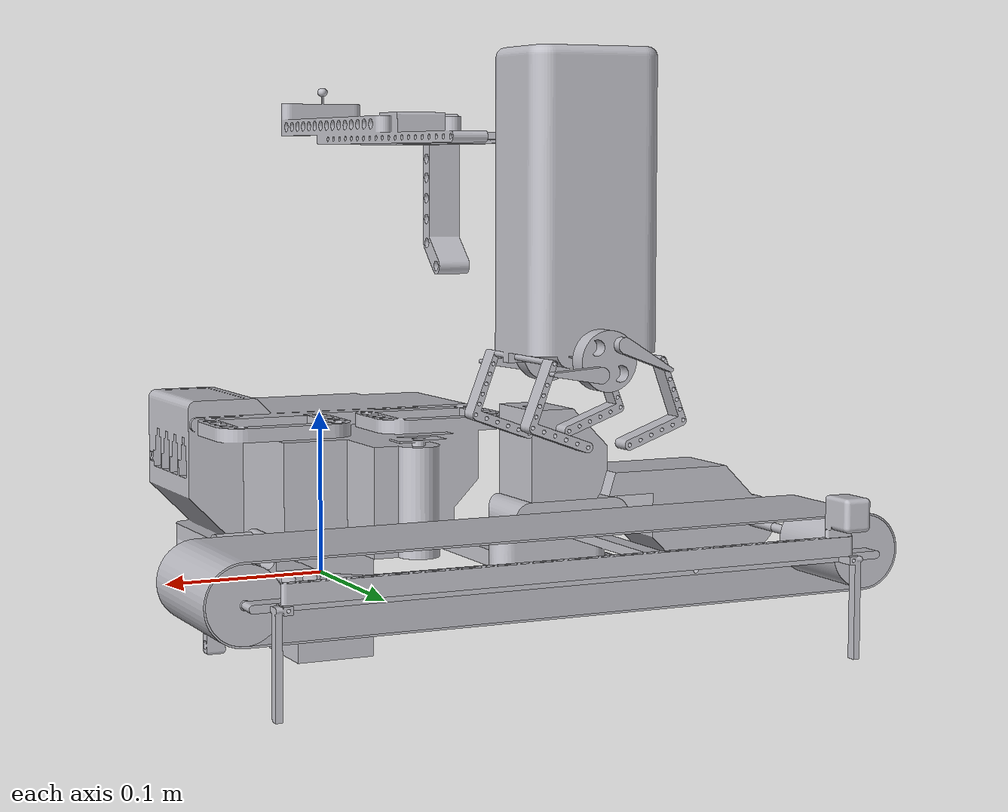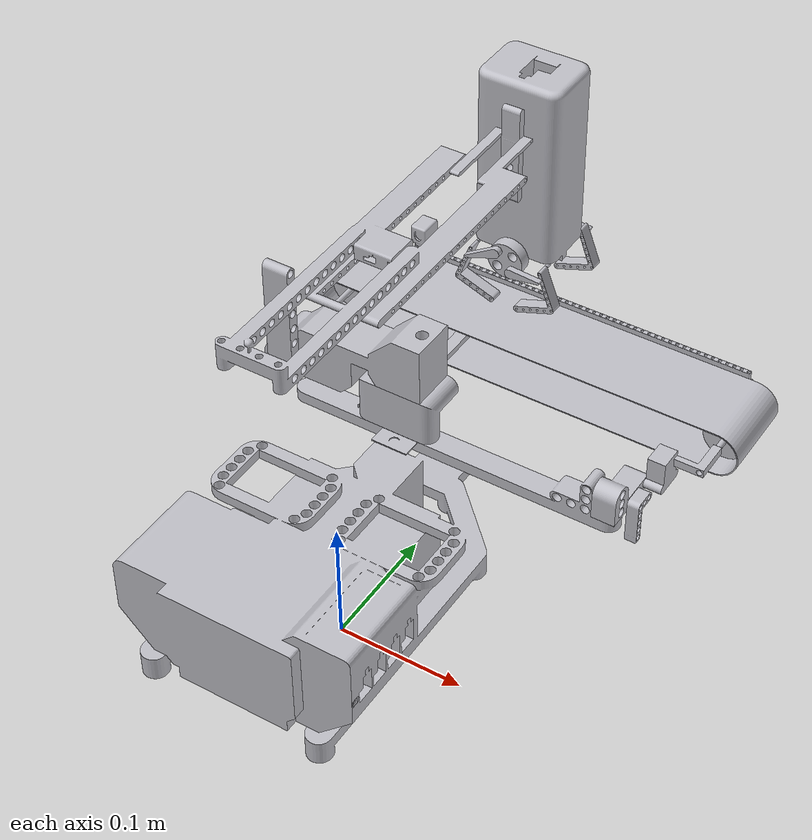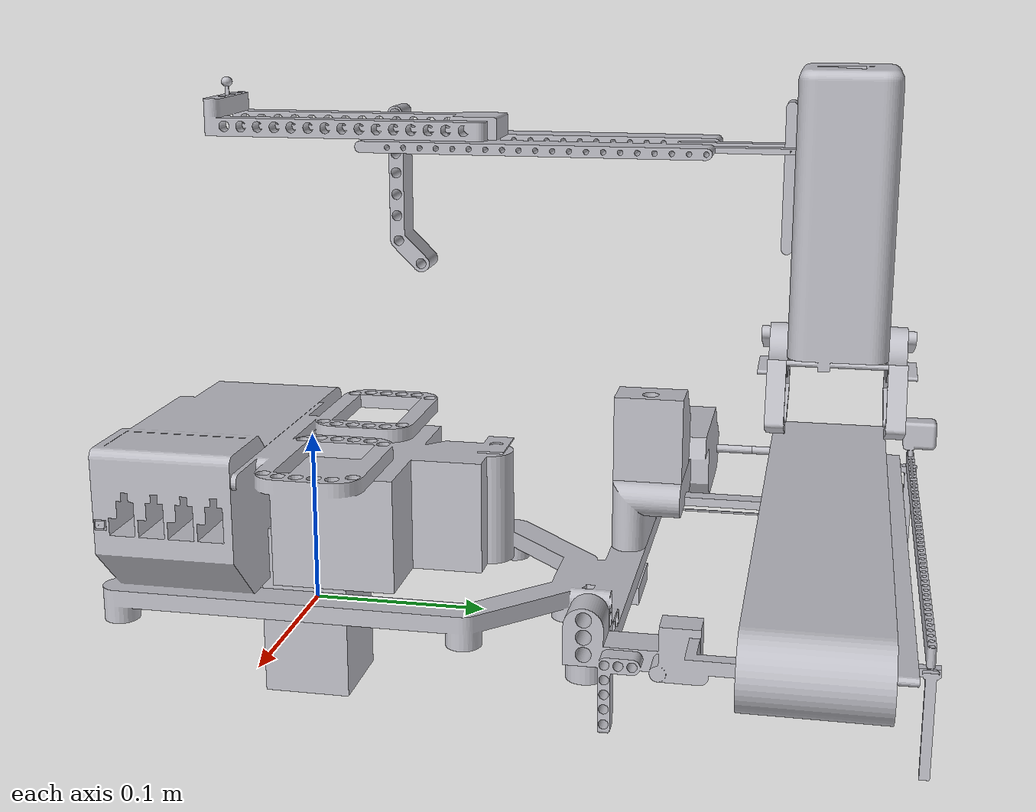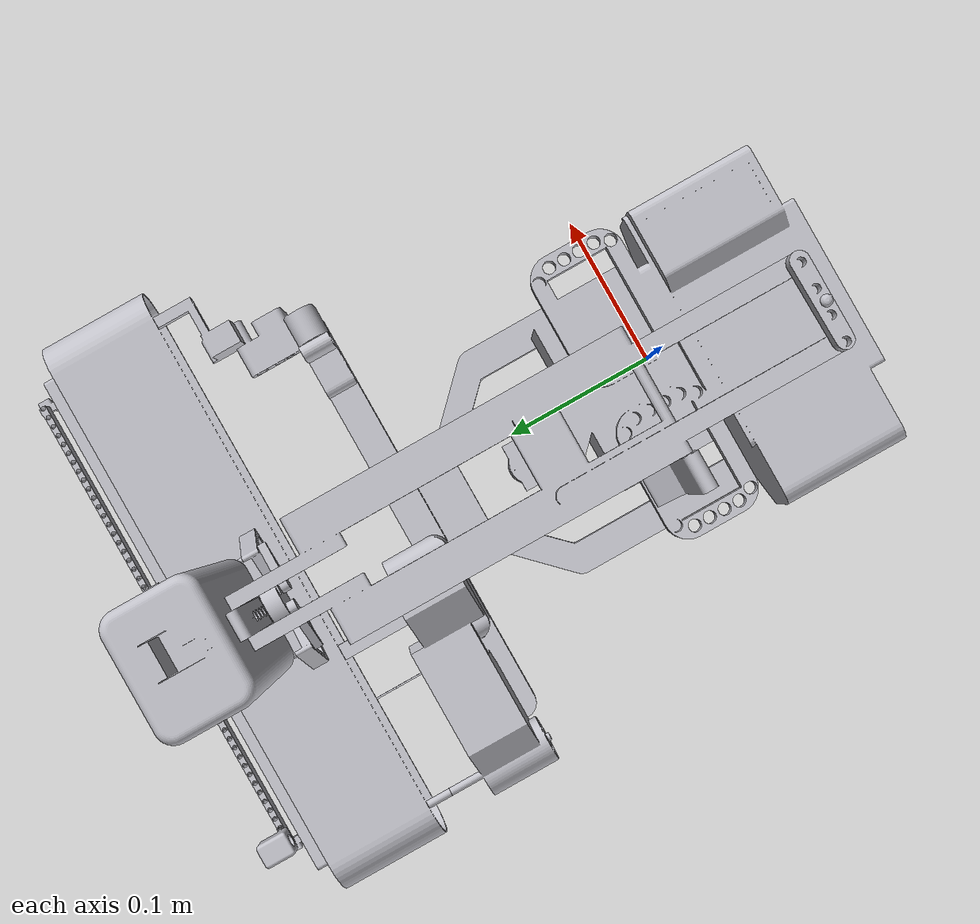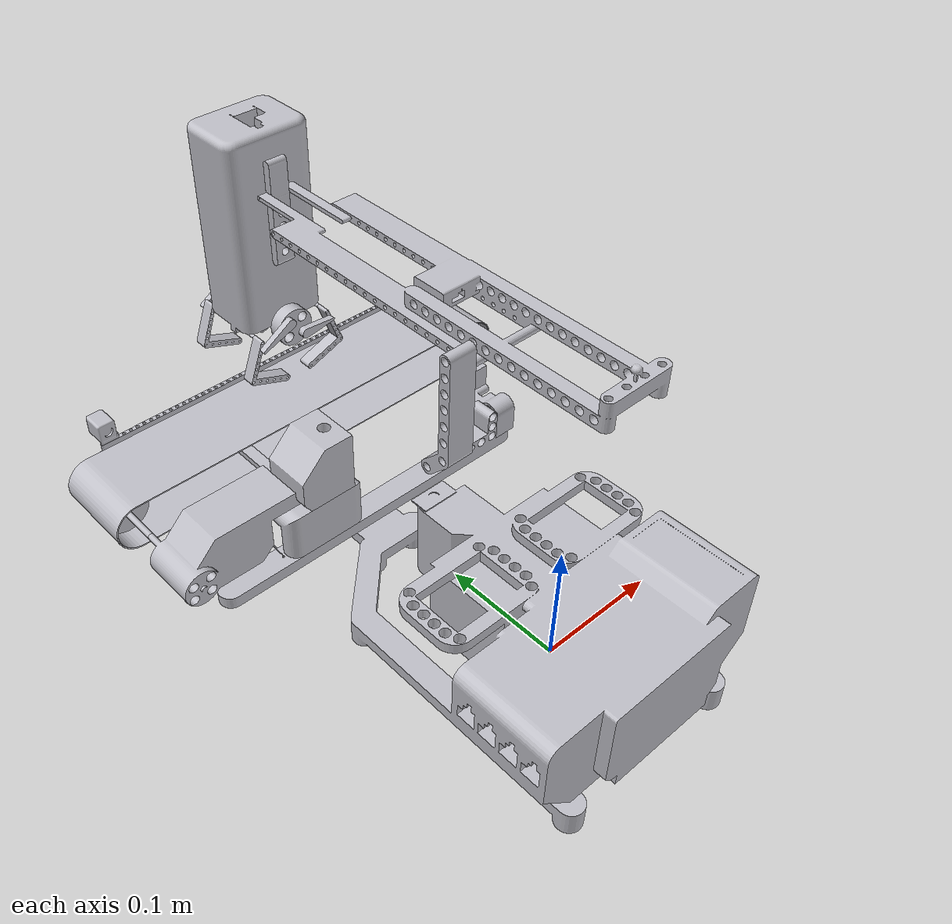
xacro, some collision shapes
<?xml version="1.0" ?>
<robot name="manipulator_with_joints_brick_ev3_urdf" xmlns:xacro="http://www.ros.org/wiki/xacro">

  <!-- ==================== LINKS ==================== -->

  <link name="base_link">
    <inertial>
      <origin xyz="-0.0158078204635883 -0.016684343494357445 0.05630015108836342" rpy="0 0 0"/>
      <mass value="2.378418557"/>
      <inertia ixx="0.012898312" iyy="0.007130411" izz="0.017048032"
               ixy="-0.000501963" iyz="0.001110223" ixz="-0.000106502"/>
    </inertial>
    <visual>
      <origin xyz="0 0 0" rpy="0 0 0"/>
      <geometry>
        <mesh filename="file://$(find manipulator_ev3_brick)/meshes/base_link.stl" scale="0.001 0.001 0.001"/>
      </geometry>
      <material name="silver"/>
    </visual>
    <collision>
      <origin xyz="0 0 0" rpy="0 0 0"/>
      <geometry><box size="0.05 0.05 0.1"/></geometry>
    </collision>
  </link>

  <link name="left_finger_inner_linkage_link_1">
    <inertial>
      <origin xyz="0.01700074655116763 0.002406578063678111 0.008427489616652517" rpy="0 0 0"/>
      <mass value="0.000970829"/>
      <inertia ixx="0.000000019" iyy="0.000000077" izz="0.000000062"
               ixy="0.000000000" iyz="-0.000000000" ixz="-0.000000028"/>
    </inertial>
    <visual>
      <origin xyz="0.050353 -0.329879 -0.154227" rpy="0 0 0"/>
      <geometry>
        <mesh filename="file://$(find manipulator_ev3_brick)/meshes/left_finger_inner_linkage_link_1.stl" scale="0.001 0.001 0.001"/>
      </geometry>
      <material name="silver"/>
    </visual>
    <collision>
      <origin xyz="0.050353 -0.329879 -0.154227" rpy="0 0 0"/>
      <geometry>
        <mesh filename="file://$(find manipulator_ev3_brick)/meshes/left_finger_inner_linkage_link_1.stl" scale="0.001 0.001 0.001"/>
      </geometry>
    </collision>
  </link>

  <link name="left_finger_outer_linkage_link_1">
    <inertial>
      <origin xyz="-0.01688932328942115 0.0026112161614025298 -0.0008259090537868774" rpy="0 0 0"/>
      <mass value="0.000882953"/>
      <inertia ixx="0.000000005" iyy="0.000000056" izz="0.000000055"
               ixy="-0.000000000" iyz="-0.000000000" ixz="-0.000000002"/>
    </inertial>
    <visual>
      <origin xyz="-0.013526 -0.329451 -0.154228" rpy="0 0 0"/>
      <geometry>
        <mesh filename="file://$(find manipulator_ev3_brick)/meshes/left_finger_outer_linkage_link_1.stl" scale="0.001 0.001 0.001"/>
      </geometry>
      <material name="silver"/>
    </visual>
    <collision>
      <origin xyz="-0.013526 -0.329451 -0.154228" rpy="0 0 0"/>
      <geometry>
        <mesh filename="file://$(find manipulator_ev3_brick)/meshes/left_finger_outer_linkage_link_1.stl" scale="0.001 0.001 0.001"/>
      </geometry>
    </collision>
  </link>

  <link name="right_finger_outer_linkage_link_1">
    <inertial>
      <origin xyz="-0.01692208707665091 -0.002388812397886797 -0.0008135696514209034" rpy="0 0 0"/>
      <mass value="0.000882956"/>
      <inertia ixx="0.000000005" iyy="0.000000056" izz="0.000000055"
               ixy="-0.000000000" iyz="0.000000000" ixz="-0.000000002"/>
    </inertial>
    <visual>
      <origin xyz="-0.013038 -0.25677 -0.154403" rpy="0 0 0"/>
      <geometry>
        <mesh filename="file://$(find manipulator_ev3_brick)/meshes/right_finger_outer_linkage_link_1.stl" scale="0.001 0.001 0.001"/>
      </geometry>
      <material name="silver"/>
    </visual>
    <collision>
      <origin xyz="-0.013038 -0.25677 -0.154403" rpy="0 0 0"/>
      <geometry>
        <mesh filename="file://$(find manipulator_ev3_brick)/meshes/right_finger_outer_linkage_link_1.stl" scale="0.001 0.001 0.001"/>
      </geometry>
    </collision>
  </link>

  <link name="right_finger_inner_linkage_link_1">
    <inertial>
      <origin xyz="0.016966982764787364 -0.0025934503666555364 0.008438882478046833" rpy="0 0 0"/>
      <mass value="0.000970832"/>
      <inertia ixx="0.000000019" iyy="0.000000077" izz="0.000000062"
               ixy="0.000000000" iyz="0.000000000" ixz="-0.000000028"/>
    </inertial>
    <visual>
      <origin xyz="0.05084 -0.257198 -0.154403" rpy="0 0 0"/>
      <geometry>
        <mesh filename="file://$(find manipulator_ev3_brick)/meshes/right_finger_inner_linkage_link_1.stl" scale="0.001 0.001 0.001"/>
      </geometry>
      <material name="silver"/>
    </visual>
    <collision>
      <origin xyz="0.05084 -0.257198 -0.154403" rpy="0 0 0"/>
      <geometry>
        <mesh filename="file://$(find manipulator_ev3_brick)/meshes/right_finger_inner_linkage_link_1.stl" scale="0.001 0.001 0.001"/>
      </geometry>
    </collision>
  </link>

  <link name="arm_2_connector_1">
    <inertial>
      <origin xyz="0.007498677795214074 -0.00027180465342713234 -0.013641600058967529" rpy="0 0 0"/>
      <mass value="0.007677799"/>
      <inertia ixx="0.000004182" iyy="0.000004315" izz="0.000000181"
               ixy="0.000000000" iyz="-0.000000000" ixz="-0.000000000"/>
    </inertial>
    <visual>
      <origin xyz="0.026647 -0.2644 -0.268791" rpy="0 0 0"/>
      <geometry>
        <mesh filename="file://$(find manipulator_ev3_brick)/meshes/arm_2_connector_1.stl" scale="0.001 0.001 0.001"/>
      </geometry>
      <material name="silver"/>
    </visual>
    <collision>
      <origin xyz="0.026647 -0.2644 -0.268791" rpy="0 0 0"/>
      <geometry><box size="0.05 0.05 0.1"/></geometry>
    </collision>
  </link>

  <link name="arm_2_1">
    <inertial>
      <origin xyz="0.034700766160954036 0.05025123595485467 0.004720391674524038" rpy="0 0 0"/>
      <mass value="0.091915293"/>
      <inertia ixx="0.000560353" iyy="0.000048371" izz="0.000602558"
               ixy="-0.000003798" iyz="0.000025428" ixz="0.000000285"/>
    </inertial>
    <visual>
      <origin xyz="0.055568 -0.037636 -0.266626" rpy="0 0 0"/>
      <geometry>
        <mesh filename="file://$(find manipulator_ev3_brick)/meshes/arm_2_1.stl" scale="0.001 0.001 0.001"/>
      </geometry>
      <material name="silver"/>
    </visual>
    <collision>
      <origin xyz="0.055568 -0.037636 -0.266626" rpy="0 0 0"/>
      <geometry><box size="0.05 0.05 0.1"/></geometry>
    </collision>
  </link>

  <link name="left_arm_linkage_1">
    <inertial>
      <origin xyz="-0.009988737092035405 0.00167002119863717 0.024518765633563366" rpy="0 0 0"/>
      <mass value="0.015158310"/>
      <inertia ixx="0.000012000" iyy="0.000012103" izz="0.000000908"
               ixy="-0.000000000" iyz="0.000001200" ixz="0.000000000"/>
    </inertial>
    <visual>
      <origin xyz="0.055563 -0.038353 -0.204384" rpy="0 0 0"/>
      <geometry>
        <mesh filename="file://$(find manipulator_ev3_brick)/meshes/left_arm_linkage_1.stl" scale="0.001 0.001 0.001"/>
      </geometry>
      <material name="silver"/>
    </visual>
    <collision>
      <origin xyz="0.055563 -0.038353 -0.204384" rpy="0 0 0"/>
      <geometry><box size="0.05 0.05 0.1"/></geometry>
    </collision>
  </link>

  <link name="arm_1_1">
    <inertial>
      <origin xyz="0.0013094707050252223 -0.0115208595175465 0.0832258873283381" rpy="0 0 0"/>
      <mass value="0.400284168"/>
      <inertia ixx="0.000545387" iyy="0.000453139" izz="0.000394604"
               ixy="-0.000003534" iyz="0.000101804" ixz="-0.000005126"/>
    </inertial>
    <visual>
      <origin xyz="0.020125 -0.103583 -0.094" rpy="0 0 0"/>
      <geometry>
        <mesh filename="file://$(find manipulator_ev3_brick)/meshes/arm_1_1.stl" scale="0.001 0.001 0.001"/>
      </geometry>
      <material name="silver"/>
    </visual>
    <collision>
      <origin xyz="0.020125 -0.103583 -0.094" rpy="0 0 0"/>
      <geometry><box size="0.05 0.05 0.1"/></geometry>
    </collision>
  </link>

  <link name="sensor_housing_link_1">
    <inertial>
      <origin xyz="0.004131436878425598 0.005027483357744722 0.012262185384712854" rpy="0 0 0"/>
      <mass value="0.005629837"/>
      <inertia ixx="0.000000316" iyy="0.000000247" izz="0.000000276"
               ixy="0.000000002" iyz="-0.000000008" ixz="0.000000003"/>
    </inertial>
    <visual>
      <origin xyz="0.152314 -0.341622 -0.064322" rpy="0 0 0"/>
      <geometry>
        <mesh filename="file://$(find manipulator_ev3_brick)/meshes/sensor_housing_link_1.stl" scale="0.001 0.001 0.001"/>
      </geometry>
      <material name="silver"/>
    </visual>
    <collision>
      <origin xyz="0.152314 -0.341622 -0.064322" rpy="0 0 0"/>
      <geometry><box size="0.05 0.05 0.1"/></geometry>
    </collision>
  </link>

  <link name="bench_stand_link_1">
    <inertial>
      <origin xyz="0.15279437578420996 0.005368693703167671 0.0014846288551825654" rpy="0 0 0"/>
      <mass value="0.012693811"/>
      <inertia ixx="0.000002351" iyy="0.000142220" izz="0.000139919"
               ixy="0.000000000" iyz="0.000000002" ixz="-0.000000010"/>
    </inertial>
    <visual>
      <origin xyz="0.152651 -0.33625 -0.052373" rpy="0 0 0"/>
      <geometry>
        <mesh filename="file://$(find manipulator_ev3_brick)/meshes/bench_stand_link_1.stl" scale="0.001 0.001 0.001"/>
      </geometry>
      <material name="silver"/>
    </visual>
    <collision>
      <origin xyz="0.152651 -0.33625 -0.052373" rpy="0 0 0"/>
      <geometry><box size="0.05 0.05 0.1"/></geometry>
    </collision>
  </link>

  <link name="base_motor_housing_linkage_1">
    <inertial>
      <origin xyz="0.017723391003370427 0.02989903641806846 0.023115457332273368" rpy="0 0 0"/>
      <mass value="0.107566005"/>
      <inertia ixx="0.000328646" iyy="0.000247060" izz="0.000555060"
               ixy="-0.000114913" iyz="-0.000001907" ixz="0.000001017"/>
    </inertial>
    <visual>
      <origin xyz="0.073638 -0.18132 -0.03" rpy="0 0 0"/>
      <geometry>
        <mesh filename="file://$(find manipulator_ev3_brick)/meshes/base_motor_housing_linkage_1.stl" scale="0.001 0.001 0.001"/>
      </geometry>
      <material name="silver"/>
    </visual>
    <collision>
      <origin xyz="0.073638 -0.18132 -0.03" rpy="0 0 0"/>
      <geometry><box size="0.05 0.05 0.1"/></geometry>
    </collision>
  </link>

  <link name="motor_housing_link_1">
    <inertial>
      <origin xyz="-0.06309969671334938 0.006323719933215233 0.0025315749111980146" rpy="0 0 0"/>
      <mass value="0.254821625"/>
      <inertia ixx="0.000148434" iyy="0.000588832" izz="0.000523530"
               ixy="0.000044079" iyz="0.000017900" ixz="-0.000173472"/>
    </inertial>
    <visual>
      <origin xyz="0.05 -0.18875 -0.07" rpy="0 0 0"/>
      <geometry>
        <mesh filename="file://$(find manipulator_ev3_brick)/meshes/motor_housing_link_1.stl" scale="0.001 0.001 0.001"/>
      </geometry>
      <material name="silver"/>
    </visual>
    <collision>
      <origin xyz="0.05 -0.18875 -0.07" rpy="0 0 0"/>
      <geometry><box size="0.05 0.05 0.1"/></geometry>
    </collision>
  </link>

  <link name="conveyor_base_linkage_1">
    <inertial>
      <origin xyz="0.010087463822805925 0.03754187481060908 0.011762502239359672" rpy="0 0 0"/>
      <mass value="0.028718165"/>
      <inertia ixx="0.000018706" iyy="0.000007542" izz="0.000020178"
               ixy="-0.000005957" iyz="-0.000001450" ixz="-0.000000781"/>
    </inertial>
    <visual>
      <origin xyz="-0.12 -0.16875 -0.03" rpy="0 0 0"/>
      <geometry>
        <mesh filename="file://$(find manipulator_ev3_brick)/meshes/conveyor_base_linkage_1.stl" scale="0.001 0.001 0.001"/>
      </geometry>
      <material name="silver"/>
    </visual>
    <collision>
      <origin xyz="-0.12 -0.16875 -0.03" rpy="0 0 0"/>
      <geometry><box size="0.05 0.05 0.1"/></geometry>
    </collision>
  </link>

  <link name="right_pulley_link1_1">
    <inertial>
      <origin xyz="-1.8517683911256633e-07 0.025000000000000022 3.6610241897078177e-07" rpy="0 0 0"/>
      <mass value="0.064030557"/>
      <inertia ixx="0.000019213" iyy="0.000011746" izz="0.000019213"
               ixy="0.000000000" iyz="0.000000000" ixz="0.000000000"/>
    </inertial>
    <visual>
      <origin xyz="-0.166124 -0.27575 -0.052322" rpy="0 0 0"/>
      <geometry>
        <mesh filename="file://$(find manipulator_ev3_brick)/meshes/right_pulley_link1_1.stl" scale="0.001 0.001 0.001"/>
      </geometry>
      <material name="silver"/>
    </visual>
    <collision>
      <origin xyz="-0.166124 -0.27575 -0.052322" rpy="0 0 0"/>
      <geometry><box size="0.05 0.05 0.1"/></geometry>
    </collision>
  </link>

  <link name="right_pulley_shaft_link_1">
    <inertial>
      <origin xyz="-5.273570030661645e-08 0.007000000000000006 2.6368448476088435e-07" rpy="0 0 0"/>
      <mass value="0.000315710"/>
      <inertia ixx="0.000000006" iyy="0.000000001" izz="0.000000006"
               ixy="0.000000000" iyz="0.000000000" ixz="-0.000000000"/>
    </inertial>
    <visual>
      <origin xyz="-0.166124 -0.26175 -0.052322" rpy="0 0 0"/>
      <geometry>
        <mesh filename="file://$(find manipulator_ev3_brick)/meshes/right_pulley_shaft_link_1.stl" scale="0.001 0.001 0.001"/>
      </geometry>
      <material name="silver"/>
    </visual>
    <collision>
      <origin xyz="-0.166124 -0.26175 -0.052322" rpy="0 0 0"/>
      <geometry><box size="0.05 0.05 0.1"/></geometry>
    </collision>
  </link>

  <link name="right_pulley_link_1">
    <inertial>
      <origin xyz="3.291888364120865e-07 0.025000000000000022 3.317369350122612e-07" rpy="0 0 0"/>
      <mass value="0.065151427"/>
      <inertia ixx="0.000019448" iyy="0.000011749" izz="0.000019448"
               ixy="-0.000000000" iyz="0.000000000" ixz="-0.000000000"/>
    </inertial>
    <visual>
      <origin xyz="0.173678 -0.27575 -0.052322" rpy="0 0 0"/>
      <geometry>
        <mesh filename="file://$(find manipulator_ev3_brick)/meshes/right_pulley_link_1.stl" scale="0.001 0.001 0.001"/>
      </geometry>
      <material name="silver"/>
    </visual>
    <collision>
      <origin xyz="0.173678 -0.27575 -0.052322" rpy="0 0 0"/>
      <geometry><box size="0.05 0.05 0.1"/></geometry>
    </collision>
  </link>

  <link name="left_motor_shaft_link_1">
    <inertial>
      <origin xyz="3.291890975642975e-07 0.01700000000000043 3.317369351024668e-07" rpy="0 0 0"/>
      <mass value="0.000765536"/>
      <inertia ixx="0.000000075" iyy="0.000000002" izz="0.000000075"
               ixy="-0.000000000" iyz="-0.000000000" ixz="0.000000000"/>
    </inertial>
    <visual>
      <origin xyz="0.173678 -0.24175 -0.052322" rpy="0 0 0"/>
      <geometry>
        <mesh filename="file://$(find manipulator_ev3_brick)/meshes/left_motor_shaft_link_1.stl" scale="0.001 0.001 0.001"/>
      </geometry>
      <material name="silver"/>
    </visual>
    <collision>
      <origin xyz="0.173678 -0.24175 -0.052322" rpy="0 0 0"/>
      <geometry><box size="0.05 0.05 0.1"/></geometry>
    </collision>
  </link>

  <link name="conveyor_belt_link_1">
    <inertial>
      <origin xyz="0.09912558995249274 0.035001006559134185 0.019422948046812286" rpy="0 0 0"/>
      <mass value="0.064547743"/>
      <inertia ixx="0.000049025" iyy="0.000876457" izz="0.000880144"
               ixy="0.000000006" iyz="0.000000001" ixz="0.000000004"/>
    </inertial>
    <visual>
      <origin xyz="0.1029 -0.25575 -0.0329" rpy="0 0 0"/>
      <geometry>
        <mesh filename="file://$(find manipulator_ev3_brick)/meshes/conveyor_belt_link_1.stl" scale="0.001 0.001 0.001"/>
      </geometry>
      <material name="silver"/>
    </visual>
    <collision>
      <origin xyz="0.1029 -0.25575 -0.0329" rpy="0 0 0"/>
      <geometry>
        <mesh filename="file://$(find manipulator_ev3_brick)/meshes/conveyor_belt_link_1.stl" scale="0.001 0.001 0.001"/>
      </geometry>
    </collision>
  </link>

  <!-- FIXED: all zero inertia → 1e-09 minimum -->
  <link name="conveyor_linkage_link_1">
    <inertial>
      <origin xyz="2.5982958983983284e-05 0.007000000000000006 -9.55032723219118e-05" rpy="0 0 0"/>
      <mass value="0.000012975"/>
      <inertia ixx="1e-09" iyy="1e-09" izz="1e-09"
               ixy="0.0" iyz="0.0" ixz="0.0"/>
    </inertial>
    <visual>
      <origin xyz="0.1029 -0.24175 -0.0329" rpy="0 0 0"/>
      <geometry>
        <mesh filename="file://$(find manipulator_ev3_brick)/meshes/conveyor_linkage_link_1.stl" scale="0.001 0.001 0.001"/>
      </geometry>
      <material name="silver"/>
    </visual>
    <collision>
      <origin xyz="0.1029 -0.24175 -0.0329" rpy="0 0 0"/>
      <geometry><box size="0.05 0.05 0.1"/></geometry>
    </collision>
  </link>

  <link name="left_finger_inner_link_1">
    <inertial>
      <origin xyz="0.0007812742990379526 0.004926023740467467 -0.028751971976625157" rpy="0 0 0"/>
      <mass value="0.002863808"/>
      <inertia ixx="0.000000421" iyy="0.000000633" izz="0.000000261"
               ixy="-0.000000000" iyz="0.000000000" ixz="0.000000164"/>
    </inertial>
    <visual>
      <origin xyz="0.048471 -0.319878 -0.159288" rpy="0 0 0"/>
      <geometry>
        <mesh filename="file://$(find manipulator_ev3_brick)/meshes/left_finger_inner_link_1.stl" scale="0.001 0.001 0.001"/>
      </geometry>
      <material name="silver"/>
    </visual>
    <collision>
      <origin xyz="0.048471 -0.319878 -0.159288" rpy="0 0 0"/>
      <geometry>
        <mesh filename="file://$(find manipulator_ev3_brick)/meshes/left_finger_inner_link_1.stl" scale="0.001 0.001 0.001"/>
      </geometry>
    </collision>
  </link>

  <link name="left_finger_outer_link_1">
    <inertial>
      <origin xyz="-0.0007150326757644279 0.004935950273782963 -0.028751758132919886" rpy="0 0 0"/>
      <mass value="0.002863807"/>
      <inertia ixx="0.000000421" iyy="0.000000633" izz="0.000000261"
               ixy="0.000000000" iyz="-0.000000000" ixz="-0.000000164"/>
    </inertial>
    <visual>
      <origin xyz="-0.01151 -0.319476 -0.159288" rpy="0 0 0"/>
      <geometry>
        <mesh filename="file://$(find manipulator_ev3_brick)/meshes/left_finger_outer_link_1.stl" scale="0.001 0.001 0.001"/>
      </geometry>
      <material name="silver"/>
    </visual>
    <collision>
      <origin xyz="-0.01151 -0.319476 -0.159288" rpy="0 0 0"/>
      <geometry>
        <mesh filename="file://$(find manipulator_ev3_brick)/meshes/left_finger_outer_link_1.stl" scale="0.001 0.001 0.001"/>
      </geometry>
    </collision>
  </link>

  <link name="left_gear_link_1">
    <inertial>
      <origin xyz="-3.095771038838513e-06 0.004698753396245148 -0.00012723022456612165" rpy="0 0 0"/>
      <mass value="0.006249451"/>
      <inertia ixx="0.000000418" iyy="0.000000733" izz="0.000000425"
               ixy="0.000000000" iyz="0.000000001" ixz="-0.000000002"/>
    </inertial>
    <visual>
      <origin xyz="0.018489 -0.319678 -0.159288" rpy="0 0 0"/>
      <geometry>
        <mesh filename="file://$(find manipulator_ev3_brick)/meshes/left_gear_link_1.stl" scale="0.001 0.001 0.001"/>
      </geometry>
      <material name="silver"/>
    </visual>
    <collision>
      <origin xyz="0.018489 -0.319678 -0.159288" rpy="0 0 0"/>
      <geometry>
        <mesh filename="file://$(find manipulator_ev3_brick)/meshes/left_gear_link_1.stl" scale="0.001 0.001 0.001"/>
      </geometry>
    </collision>
  </link>

  <link name="right_finger_outer_link_1">
    <inertial>
      <origin xyz="-0.000782240912928998 -0.005064458980703568 -0.028727602875359304" rpy="0 0 0"/>
      <mass value="0.002863806"/>
      <inertia ixx="0.000000421" iyy="0.000000633" izz="0.000000261"
               ixy="0.000000000" iyz="0.000000000" ixz="-0.000000164"/>
    </inertial>
    <visual>
      <origin xyz="-0.011157 -0.266795 -0.159415" rpy="0 0 0"/>
      <geometry>
        <mesh filename="file://$(find manipulator_ev3_brick)/meshes/right_finger_outer_link_1.stl" scale="0.001 0.001 0.001"/>
      </geometry>
      <material name="silver"/>
    </visual>
    <collision>
      <origin xyz="-0.011157 -0.266795 -0.159415" rpy="0 0 0"/>
      <geometry>
        <mesh filename="file://$(find manipulator_ev3_brick)/meshes/right_finger_outer_link_1.stl" scale="0.001 0.001 0.001"/>
      </geometry>
    </collision>
  </link>

  <link name="right_gear_link_1">
    <inertial>
      <origin xyz="-6.527403539840701e-05 -0.004699514910975644 -0.00010447166254287654" rpy="0 0 0"/>
      <mass value="0.006249451"/>
      <inertia ixx="0.000000418" iyy="0.000000733" izz="0.000000425"
               ixy="-0.000000000" iyz="-0.000000001" ixz="-0.000000002"/>
    </inertial>
    <visual>
      <origin xyz="0.018843 -0.266996 -0.159415" rpy="0 0 0"/>
      <geometry>
        <mesh filename="file://$(find manipulator_ev3_brick)/meshes/right_gear_link_1.stl" scale="0.001 0.001 0.001"/>
      </geometry>
      <material name="silver"/>
    </visual>
    <collision>
      <origin xyz="0.018843 -0.266996 -0.159415" rpy="0 0 0"/>
      <geometry>
        <mesh filename="file://$(find manipulator_ev3_brick)/meshes/right_gear_link_1.stl" scale="0.001 0.001 0.001"/>
      </geometry>
    </collision>
  </link>

  <link name="right_finger_inner_link_1">
    <inertial>
      <origin xyz="0.0007140660627226528 -0.005074385385063218 -0.02872776326003615" rpy="0 0 0"/>
      <mass value="0.002863808"/>
      <inertia ixx="0.000000421" iyy="0.000000633" izz="0.000000261"
               ixy="0.000000000" iyz="-0.000000000" ixz="0.000000164"/>
    </inertial>
    <visual>
      <origin xyz="0.048824 -0.267197 -0.159415" rpy="0 0 0"/>
      <geometry>
        <mesh filename="file://$(find manipulator_ev3_brick)/meshes/right_finger_inner_link_1.stl" scale="0.001 0.001 0.001"/>
      </geometry>
      <material name="silver"/>
    </visual>
    <collision>
      <origin xyz="0.048824 -0.267197 -0.159415" rpy="0 0 0"/>
      <geometry>
        <mesh filename="file://$(find manipulator_ev3_brick)/meshes/right_finger_inner_link_1.stl" scale="0.001 0.001 0.001"/>
      </geometry>
    </collision>
  </link>

  <link name="arm_3_1">
    <inertial>
      <origin xyz="0.00016683058619830146 0.026443551026219536 0.011654426829800613" rpy="0 0 0"/>
      <mass value="0.608679918"/>
      <inertia ixx="0.001275109" iyy="0.001381671" izz="0.000380422"
               ixy="0.000000210" iyz="-0.000005667" ixz="0.000001799"/>
    </inertial>
    <visual>
      <origin xyz="0.019128 -0.267151 -0.223153" rpy="0 0 0"/>
      <geometry>
        <mesh filename="file://$(find manipulator_ev3_brick)/meshes/arm_3_1.stl" scale="0.001 0.001 0.001"/>
      </geometry>
      <material name="silver"/>
    </visual>
    <collision>
      <origin xyz="0.019128 -0.267151 -0.223153" rpy="0 0 0"/>
      <geometry><box size="0.05 0.05 0.1"/></geometry>
    </collision>
  </link>

  <!-- ==================== JOINTS ==================== -->

  <!-- BASE STRUCTURE -->
  <joint name="arm_1_base_link_joint" type="revolute">
    <origin xyz="-0.020125 0.103583 0.094" rpy="0 0 0"/>
    <parent link="base_link"/>
    <child link="arm_1_1"/>
    <axis xyz="0.0 0.0 -1.0"/>
    <limit lower="-3.14159" upper="3.14159" effort="100" velocity="1.0"/>
    <dynamics damping="1.0" friction="0.5"/>
  </joint>

  <joint name="base_motor_housing_linkage_base_link_joint" type="fixed">
    <origin xyz="-0.073638 0.18132 0.03" rpy="0 0 0"/>
    <parent link="base_link"/>
    <child link="base_motor_housing_linkage_1"/>
  </joint>

  <joint name="right_pulley_linkage_base_link_joint" type="fixed">
    <origin xyz="0.12 0.16875 0.03" rpy="0 0 0"/>
    <parent link="base_link"/>
    <child link="conveyor_base_linkage_1"/>
  </joint>

  <joint name="conveyor_linkage_base_link_joint" type="fixed">
    <origin xyz="-0.1029 0.24175 0.0329" rpy="0 0 0"/>
    <parent link="base_link"/>
    <child link="conveyor_linkage_link_1"/>
  </joint>

  <!-- SENSOR BENCH -->
  <joint name="motor_housing_base_motor_housing_linkage_joint" type="fixed">
    <origin xyz="0.023638 0.00743 0.04" rpy="0 0 0"/>
    <parent link="base_motor_housing_linkage_1"/>
    <child link="motor_housing_link_1"/>
  </joint>

  <joint name="bench_stand_bench_support_joint" type="fixed">
    <origin xyz="-0.079013 0.15493 0.022373" rpy="0 0 0"/>
    <parent link="base_motor_housing_linkage_1"/>
    <child link="bench_stand_link_1"/>
  </joint>

  <joint name="sensor_housing_bench_stand_joint" type="fixed">
    <origin xyz="0.000337 0.005372 0.011949" rpy="0 0 0"/>
    <parent link="bench_stand_link_1"/>
    <child link="sensor_housing_link_1"/>
  </joint>

  <!-- CONVEYOR -->
  <joint name="conveyor_link_conveyor_linkage_joint" type="fixed">
    <origin xyz="0.0 0.014 0.0" rpy="0 0 0"/>
    <parent link="conveyor_linkage_link_1"/>
    <child link="conveyor_belt_link_1"/>
  </joint>

  <joint name="left_pulley_shaft_motor_housing_joint" type="continuous">
    <origin xyz="-0.123678 0.053 -0.017678" rpy="0 0 0"/>
    <parent link="motor_housing_link_1"/>
    <child link="left_motor_shaft_link_1"/>
    <axis xyz="0.0 1.0 0.0"/>
  </joint>

  <joint name="left_pulley_left_pulley_shaft_joint" type="continuous">
    <origin xyz="0.0 0.034 0.0" rpy="0 0 0"/>
    <parent link="left_motor_shaft_link_1"/>
    <child link="right_pulley_link_1"/>
    <axis xyz="0.0 1.0 0.0"/>
    <mimic joint="left_pulley_shaft_motor_housing_joint" multiplier="1" offset="0"/>
  </joint>

  <joint name="right_pulley_shaft_right_pulley_shaft_linkage_joint" type="continuous">
    <origin xyz="0.046124 0.093 0.022322" rpy="0 0 0"/>
    <parent link="conveyor_base_linkage_1"/>
    <child link="right_pulley_shaft_link_1"/>
    <axis xyz="0.0 -1.0 0.0"/>
    <mimic joint="left_pulley_shaft_motor_housing_joint" multiplier="-1" offset="0"/>
  </joint>

  <joint name="right_pulley_right_pulley_shaft_joint" type="continuous">
    <origin xyz="0.0 0.014 0.0" rpy="0 0 0"/>
    <parent link="right_pulley_shaft_link_1"/>
    <child link="right_pulley_link1_1"/>
    <axis xyz="0.0 1.0 0.0"/>
    <mimic joint="left_pulley_shaft_motor_housing_joint" multiplier="-1" offset="0"/>
  </joint>

  <!-- ARM -->
  <joint name="left_arm_linkage_arm_1_joint" type="fixed">
    <origin xyz="-0.035438 -0.06523 0.110384" rpy="0 0 0"/>
    <parent link="arm_1_1"/>
    <child link="left_arm_linkage_1"/>
  </joint>

  <joint name="left_arm_linkage_arm_2_joint" type="revolute">
    <origin xyz="-5e-06 -0.000717 0.062242" rpy="0 0 0"/>
    <parent link="left_arm_linkage_1"/>
    <child link="arm_2_1"/>
    <axis xyz="0.999978 -0.006704 -0.0"/>
    <limit lower="-1.5708" upper="1.5708" effort="100" velocity="1.0"/>
    <dynamics damping="1.0" friction="0.5"/>
  </joint>

  <joint name="arm_2_connector_arm_2_joint" type="revolute">
    <origin xyz="0.028921 0.226764 0.002165" rpy="0 0 0"/>
    <parent link="arm_2_1"/>
    <child link="arm_2_connector_1"/>
    <axis xyz="0.999978 -0.006704 0.0"/>
    <limit lower="-1.5708" upper="1.5708" effort="100" velocity="1.0"/>
    <dynamics damping="1.0" friction="0.5"/>
    <mimic joint="left_arm_linkage_arm_2_joint" multiplier="-1" offset="0"/>
  </joint>

  <joint name="arm_3_arm_connector_joint" type="fixed">
    <origin xyz="0.007519 0.002751 -0.045638" rpy="0 0 0"/>
    <parent link="arm_2_connector_1"/>
    <child link="arm_3_1"/>
  </joint>

  <!-- LEFT GRIPPER -->

  <joint name="left_gear_arm_3_joint" type="revolute">
    <origin xyz="0.000639 0.052527 -0.063865" rpy="0 0 0"/>
    <parent link="arm_3_1"/>
    <child link="left_gear_link_1"/>
    <axis xyz="-0.006704 -0.999975 0.002412"/>
    <limit lower="-1.5708" upper="1.5708" effort="50" velocity="1.0"/>
    <dynamics damping="0.5" friction="0.1"/>
  </joint>

  <joint name="left_inner_finger_arm_3_joint" type="revolute">
    <origin xyz="-0.029343 0.052727 -0.063865" rpy="0 0 0"/>
    <parent link="arm_3_1"/>
    <child link="left_finger_inner_link_1"/>
    <axis xyz="-0.006704 -0.999975 0.002412"/>
    <limit lower="-1.5708" upper="1.5708" effort="50" velocity="1.0"/>
    <dynamics damping="0.5" friction="0.1"/>
    <mimic joint="left_gear_arm_3_joint" multiplier="1" offset="0"/>
  </joint>

  <joint name="left_inner_linkage_left_inner_finger_joint" type="revolute">
    <origin xyz="-0.001882 0.010001 -0.005061" rpy="0 0 0"/>
    <parent link="left_finger_inner_link_1"/>
    <child link="left_finger_inner_linkage_link_1"/>
    <axis xyz="-0.006704 -0.999975 0.002412"/>
    <limit lower="-1.5708" upper="1.5708" effort="10" velocity="1.0"/>
    <dynamics damping="0.1" friction="0.05"/>
    <mimic joint="left_gear_arm_3_joint" multiplier="1" offset="0"/>
  </joint>

  <joint name="left_outer_finger_arm_3_joint" type="revolute">
    <origin xyz="0.030638 0.052325 -0.063865" rpy="0 0 0"/>
    <parent link="arm_3_1"/>
    <child link="left_finger_outer_link_1"/>
    <axis xyz="0.006704 0.999975 -0.002412"/>
    <limit lower="-1.5708" upper="1.5708" effort="50" velocity="1.0"/>
    <dynamics damping="0.5" friction="0.1"/>
    <mimic joint="left_gear_arm_3_joint" multiplier="1" offset="0"/>
  </joint>

  <joint name="left_outer_linkage_left_outer_finger_joint" type="revolute">
    <origin xyz="0.002016 0.009975 -0.00506" rpy="0 0 0"/>
    <parent link="left_finger_outer_link_1"/>
    <child link="left_finger_outer_linkage_link_1"/>
    <axis xyz="0.006704 0.999975 -0.002412"/>
    <limit lower="-1.5708" upper="1.5708" effort="10" velocity="1.0"/>
    <dynamics damping="0.1" friction="0.05"/>
    <mimic joint="left_gear_arm_3_joint" multiplier="1" offset="0"/>
  </joint>

  <!-- RIGHT GRIPPER -->
  <joint name="right_gear_arm_3_joint" type="revolute">
    <origin xyz="0.000285 -0.000155 -0.063738" rpy="0 0 0"/>
    <parent link="arm_3_1"/>
    <child link="right_gear_link_1"/>
    <axis xyz="-0.006704 -0.999975 0.002412"/>
    <limit lower="-1.5708" upper="1.5708" effort="50" velocity="1.0"/>
    <dynamics damping="0.5" friction="0.1"/>
    <mimic joint="left_gear_arm_3_joint" multiplier="1" offset="0"/>
  </joint>

  <joint name="right_inner_finger_arm_3_joint" type="revolute">
    <origin xyz="-0.029696 4.6e-05 -0.063738" rpy="0 0 0"/>
    <parent link="arm_3_1"/>
    <child link="right_finger_inner_link_1"/>
    <axis xyz="-0.006704 -0.999975 0.002412"/>
    <limit lower="-1.5708" upper="1.5708" effort="50" velocity="1.0"/>
    <dynamics damping="0.5" friction="0.1"/>
    <!-- Follows right_gear NOT left_gear -->
    <mimic joint="right_gear_arm_3_joint" multiplier="1" offset="0"/>
  </joint>

  <joint name="right_inner_linkage_right_inner_finger_joint" type="revolute">
    <origin xyz="-0.002016 -0.009999 -0.005012" rpy="0 0 0"/>
    <parent link="right_finger_inner_link_1"/>
    <child link="right_finger_inner_linkage_link_1"/>
    <axis xyz="-0.006704 -0.999975 0.002412"/>
    <limit lower="-1.5708" upper="1.5708" effort="10" velocity="1.0"/>
    <dynamics damping="0.1" friction="0.05"/>
    <!-- Follows right_gear NOT left_gear -->
    <mimic joint="right_gear_arm_3_joint" multiplier="1" offset="0"/>
  </joint>

  <joint name="right_outer_finger_arm_3_joint" type="revolute">
    <origin xyz="0.030285 -0.000356 -0.063738" rpy="0 0 0"/>
    <parent link="arm_3_1"/>
    <child link="right_finger_outer_link_1"/>
    <axis xyz="0.006704 0.999975 -0.002412"/>
    <limit lower="-1.5708" upper="1.5708" effort="50" velocity="1.0"/>
    <dynamics damping="0.5" friction="0.1"/>
    <!-- Follows right_gear NOT left_gear -->
    <mimic joint="right_gear_arm_3_joint" multiplier="1" offset="0"/>
  </joint>

  <joint name="right_outer_linkage_right_outer_finger_joint" type="revolute">
    <origin xyz="0.001881 -0.010025 -0.005012" rpy="0 0 0"/>
    <parent link="right_finger_outer_link_1"/>
    <child link="right_finger_outer_linkage_link_1"/>
    <axis xyz="0.006704 0.999975 -0.002412"/>
    <limit lower="-1.5708" upper="1.5708" effort="10" velocity="1.0"/>
    <dynamics damping="0.1" friction="0.05"/>
    <!-- Follows right_gear NOT left_gear -->
    <mimic joint="right_gear_arm_3_joint" multiplier="1" offset="0"/>
  </joint>

</robot>
